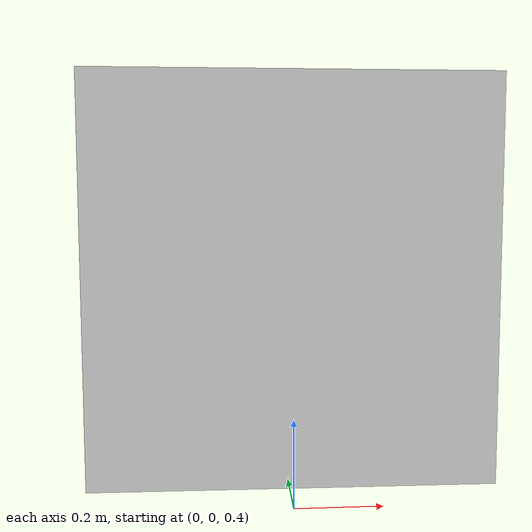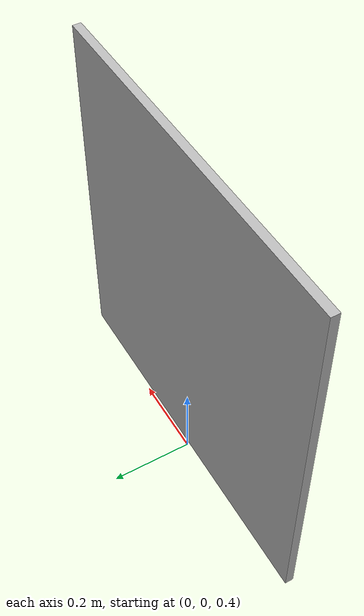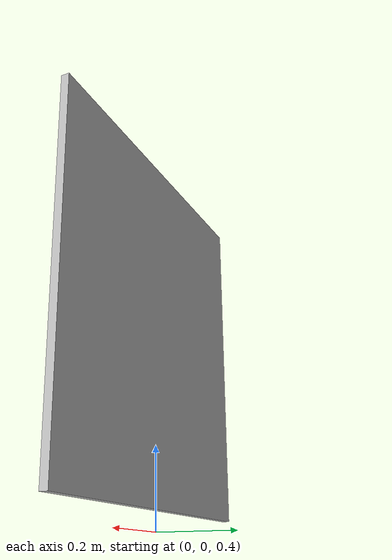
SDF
<?xml version="1.0"?>
<sdf version="1.6">
  <model name="qr_bookshelf_2">
    <static>true</static>
    <pose>0 0 0.90 0 0 0</pose>
    <link name="qr_bookshelf_2_link">
      <visual name="qr_bookshelf_2_visual">
        <pose>0 0 0 0 0 0</pose>
        <geometry>
          <box>
            <!-- Thin vertical board: width depth height -->
            <size>0.90 0.02 0.90</size>
          </box>
        </geometry>
        <material>
          <script>
            <uri>model://qr_bookshelf_2/materials/scripts</uri>
            <uri>model://qr_bookshelf_2/materials/textures</uri>
            <name>QR/Bookshelf2</name>
          </script>
        </material>
      </visual>
    </link>
  </model>
</sdf>
